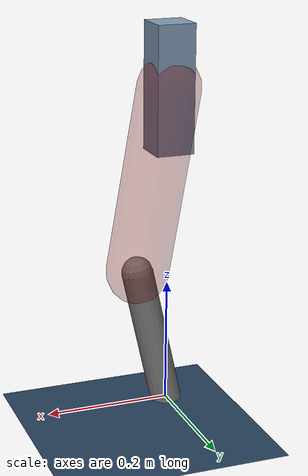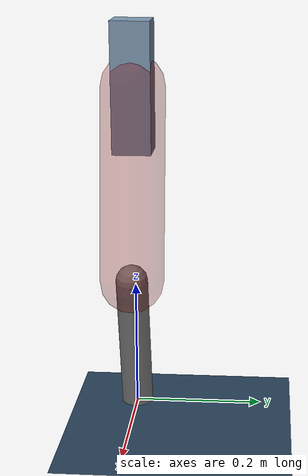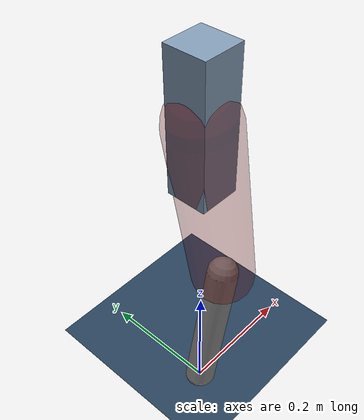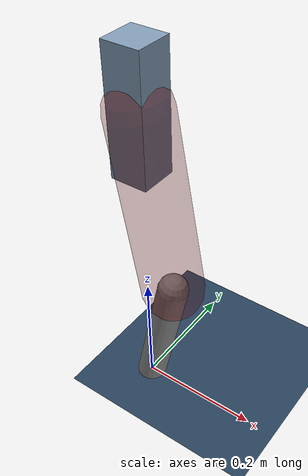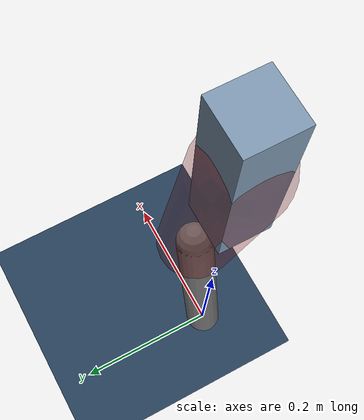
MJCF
<mujoco model="Hopper2D">
	<compiler inertiafromgeom="true" angle="radian" />
	<option timestep="0.001" integrator="implicit" cone="elliptic" solver="Newton" tolerance="1e-10" />

	<default>
		<geom contype="1" conaffinity="1" condim="3" friction="2 0.005 0.0001" solref="0.005 1" />
		<joint limited="true" damping="0.1" />
	</default>

	<asset>
		<texture name="skybox" type="skybox" builtin="gradient" rgb1=".4 .6 .8" rgb2="0 0 0" width="800" height="800" />
		<texture name="grid" type="2d" builtin="checker" rgb1=".1 .2 .3" rgb2=".2 .3 .4" width="300" height="300" mark="edge" markrgb=".2 .3 .4" />
		<material name="ground" texture="grid" texrepeat="1 1" texuniform="true" reflectance="0.1" />
		<material name="leg" rgba="0.5 0.6 0.7 1" />
	</asset>

	<worldbody>

		<geom name="floor" type="plane" size="5 5 0.25" material="ground" />

		<light directional="false" diffuse="0.8 0.8 0.8" specular="0.3 0.3 0.3" pos="0 0 2" dir="0 0 -1" />
		<light mode="targetbodycom" target="base" directional="false" diffuse="0.8 0.8 0.8" specular="0.3 0.3 0.3" pos="0 0 2" dir="0 0 -1" />

		<camera name="fixed" pos="0 -2 1" xyaxes="1 0 0 0 0 1" />
		<camera name="tracking" mode="trackcom" pos="0 -3 1" />

		<body name="root" pos="0 0 0.5166338024321295">
			<joint name="slide_x" type="slide" axis="1 0 0" range="-100 100" />
			<joint name="slide_z" type="slide" axis="0 0 1" range="0 10" />

			<body name="base" pos="0 0 0">
				<geom name="torso" type="box" size="0.03 0.03 0.1" mass="2.348" material="leg" />

				<body name="link1" pos="0 0 0" euler="0 1.3994782648809654 0">
					<joint type="hinge" axis="0 -1 0" pos="0 0 0" name="hinge1" limited="true" range="-3.14 3.14" stiffness="0" damping="0.1" />
					<geom name="thigh" type="capsule" fromto="0 0 0 0.29700647866912844 0 0" size="0.05" rgba="0.5 0 0 0.3" mass="0.9806174924066469" />

					<body name="link2" pos="0.29700647866912844 0 0" euler="0 0.39365054384445897 0">
						<joint type="hinge" axis="0 -1 0" pos="0 0 0" name="hinge2" limited="true" range="-3.14 3.14" stiffness="0" damping="0.1" />
						<geom name="shank" type="capsule" fromto="0 0 0 0.22962732376300116 0 0" size="0.025" mass="0.4257018590104009" />

					</body>
				</body>
			</body>
		</body>
	</worldbody>

	<actuator>
		<motor name="torque1" joint="hinge1" ctrlrange="-96.80327081509897 96.80327081509897" ctrllimited="true" gear="1" />
		<motor name="torque2" joint="hinge2" ctrlrange="-94.8002949257986 94.8002949257986" ctrllimited="true" gear="1" />
	</actuator>
</mujoco>
